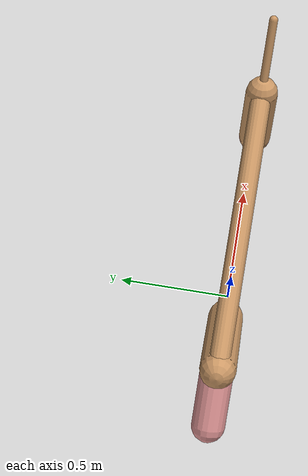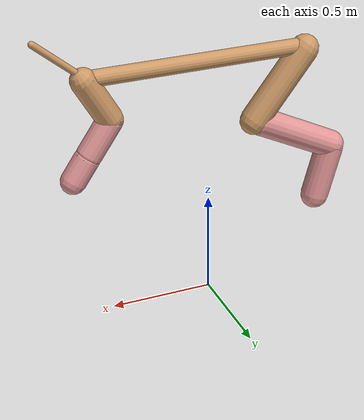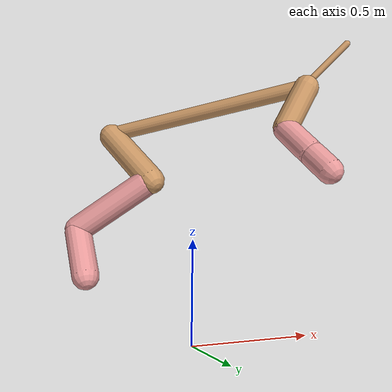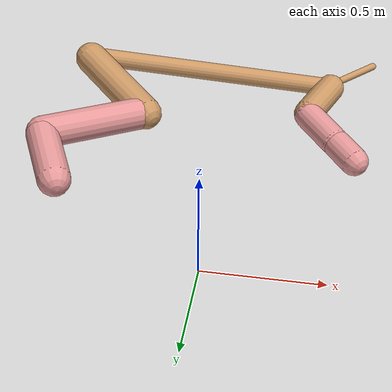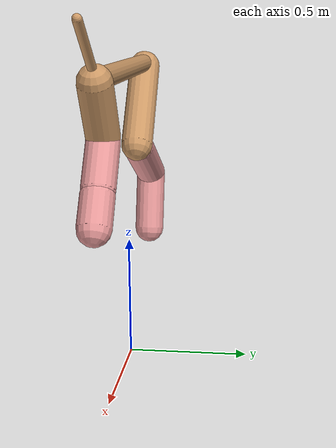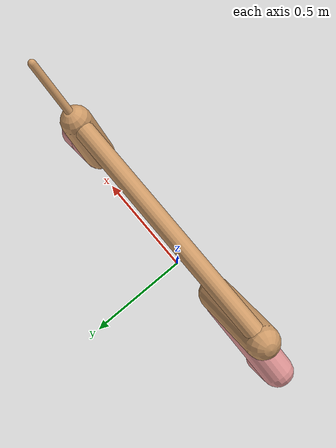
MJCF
<mujoco model="cheetah">
  <compiler angle="radian" coordinate="local" inertiafromgeom="true" settotalmass="14" />
  <default>
    <joint armature=".1" damping=".01" limited="true" solimplimit="0 .8 .03" solreflimit=".02 1" stiffness="8" />
    <geom conaffinity="0" condim="3" contype="1" friction="0.8 .1 .1" rgba="0.8 0.6 .4 1" solimp="0.0 0.8 0.01" solref="0.02 1" />
    <motor ctrllimited="true" ctrlrange="-1 1" />
  </default>
  <size nstack="300000" nuser_geom="1" />
  <option gravity="0 0 -9.81" timestep="0.01" />
  <worldbody>
    <body name="torso" pos="0.0 0.0 1.2136422057044909">
      <joint armature="0" axis="1 0 0" damping="0" limited="false" name="ignorex" pos="0 0 0" stiffness="0" type="slide" />
      <joint armature="0" axis="0 0 1" damping="0" limited="false" name="ignorez" pos="0 0 0" stiffness="0" type="slide" />
      <joint armature="0" axis="0 1 0" damping="0" limited="false" name="ignorey" pos="0 0 0" stiffness="0" type="hinge" />
      <geom fromto="-0.5 0.0 0.0 0.6035520610198164 0.0 0.0" name="torso" size="0.03958510570378123" type="capsule" />
      <geom axisangle="0 1 0 .87" name="head" pos="0.7035520610198164 0.0 0.1" size="0.01627642508175312 0.15" type="capsule" />

      <body name="bthigh" pos="-.5 0 0">
        <joint axis="0 1 0" damping="6" name="bthigh" pos="0 0 0" range="-.52 1.05" stiffness="240" type="hinge" />
        <geom axisangle="0 1 0 -3.8" name="bthigh" pos="0.13848314500548042 0.0 -0.18002808850712454" size="0.0689391685611135 0.20811705070097555" type="capsule" />
        <body name="bshin" pos="0.23696629001096087 0.0 -0.35005617701424907">
          <joint axis="0 1 0" damping="4.5" name="bshin" pos="0 0 0" range="-.785 .785" stiffness="180" type="hinge" />
          <geom axisangle="0 1 0 -2.03" name="bshin" pos="-0.19840028244414432 0.0 -0.09920014122207216" rgba="0.9 0.6 0.6 1" size="0.0689391685611135 0.21529350072514714" type="capsule" />
          <body name="bfoot" pos="-0.39680056488828863 0.0 -0.19840028244414432">
            <joint axis="0 1 0" damping="3" name="bfoot" pos="0 0 0" range="-.4 .785" stiffness="120" type="hinge" />
            <geom axisangle="0 1 0 -.27" name="bfoot" pos="0.04208981160919919 0.0 -0.13609039086974406" rgba="0.9 0.6 0.6 1" size="0.0689391685611135 0.13491726045442554" type="capsule" />
            <inertial mass="10" />
          </body>
        </body>
      </body>
      <body name="fthigh" pos="0.6035520610198164 0.0 0.0">
        <joint axis="0 1 0" damping="4.5" name="fthigh" pos="0 0 0" range="-1.5 0.8" stiffness="180" type="hinge" />
        <geom axisangle="0 1 0 .52" name="fthigh" pos="-0.06200986486376251 0.0 -0.10630262548073571" size="0.06186466637280957 0.11714249930738369" type="capsule" />
        <body name="fshin" pos="-0.12401972972752502 0.0 -0.21260525096147143">
          <joint axis="0 1 0" damping="3" name="fshin" pos="0 0 0" range="-1.2 1.1" stiffness="120" type="hinge" />
          <geom axisangle="0 1 0 -.6" name="fshin" pos="0.05760038956774913 0.0 -0.07975438555534495" rgba="0.9 0.6 0.6 1" size="0.06186466637280957 0.09336169117731331" type="capsule" />
          <body name="ffoot" pos="0.11520077913549825 0.0 -0.1595087711106899">
            <joint axis="0 1 0" damping="1.5" name="ffoot" pos="0 0 0" range="-3.1 -0.3" stiffness="60" type="hinge" />
            <geom axisangle="0 1 0 -.6" name="ffoot" pos="0.04048680848484666 0.0 -0.06297947986531703" rgba="0.9 0.6 0.6 1" size="0.06186466637280957 0.061653947003886156" type="capsule" />
            <inertial mass="10" />
          </body>
        </body>
      </body>
    </body>
  </worldbody>
  <actuator>
    <motor gear="120" joint="bthigh" name="bthigh" />
    <motor gear="90" joint="bshin" name="bshin" />
    <motor gear="60" joint="bfoot" name="bfoot" />
    <motor gear="120" joint="fthigh" name="fthigh" />
    <motor gear="60" joint="fshin" name="fshin" />
    <motor gear="30" joint="ffoot" name="ffoot" />
  </actuator>
</mujoco>
